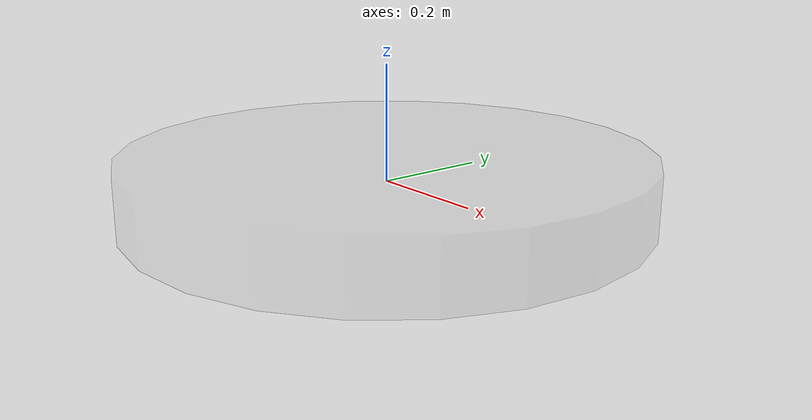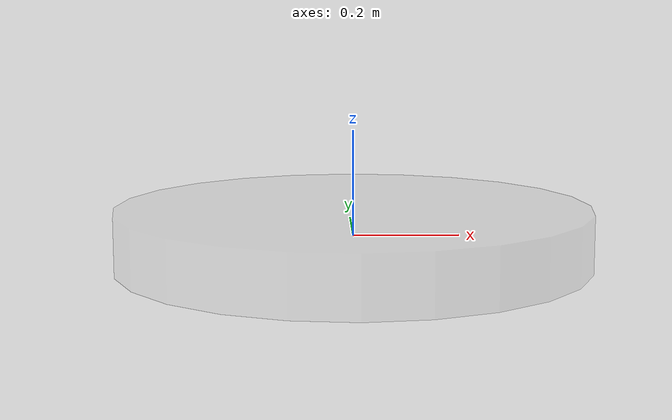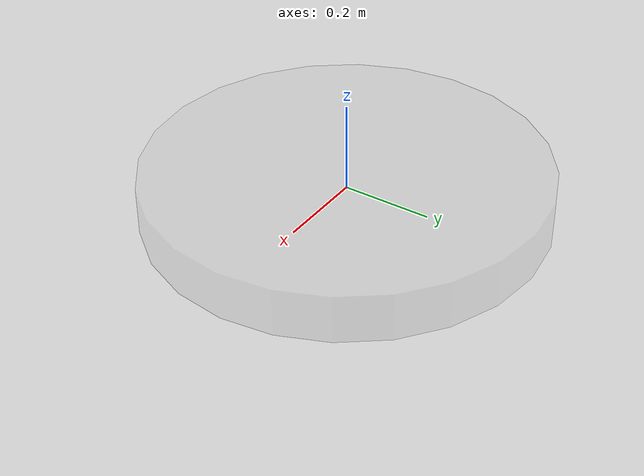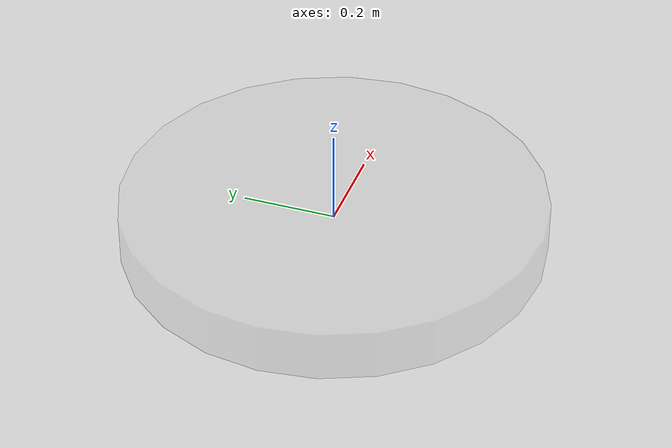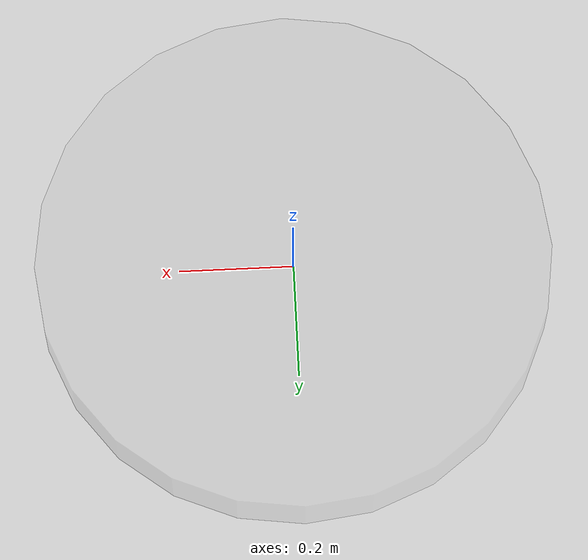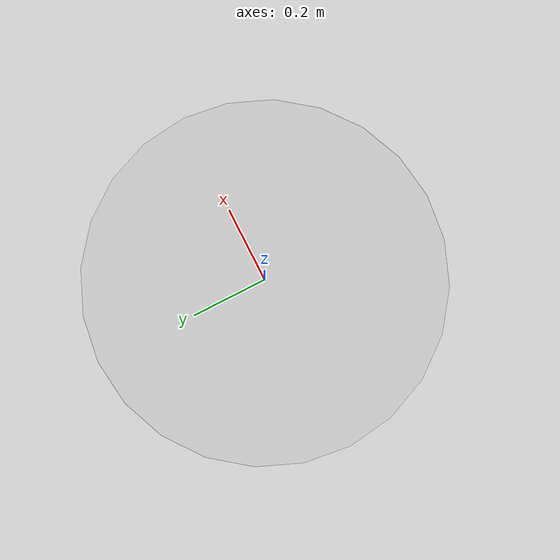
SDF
<?xml version="1.0" ?>
<sdf version="1.4">
  <model name="bumper_sensor">
    <!-- Only difference to regular iris is this sensor and a MAVLink stream -->
    <link name="bumper_link">
      <inertial>
        <pose>0.01 0.025 0.025 0 0 0</pose>
        <mass>0.01</mass>
        <inertia>
          <ixx>4.15e-6</ixx>
          <ixy>0</ixy>
          <ixz>0</ixz>
          <iyy>2.407e-6</iyy>
          <iyz>0</iyz>
          <izz>2.407e-6</izz>
        </inertia>
      </inertial>

      <collision name='bumper_collision'>
        <pose>0 0 0 0 -0 0</pose>
        <geometry>
	  <cylinder>
	    <radius> 0.45 </radius>
	    <length> 0.11 </length>
	  </cylinder>
        </geometry>
      </collision>

      <visual name='bumper_visual'>
        <pose>0 0 0 0 -0 0</pose>
        <geometry>
	  <cylinder>
	    <radius> 0.45 </radius>
	    <length> 0.11 </length>
	  </cylinder>
        </geometry>

	<transparency> 0.9 </transparency>
      </visual>

      <sensor name="bumper_sensor" type="contact">
        <always_on>true</always_on>
        <update_rate>30.0</update_rate>
        <contact>
          <collision>bumper_collision</collision>
        </contact>
        <plugin name="benchmarking_bumper" filename="libgazebo_ros_bumper.so">
          <bumperTopicName>px4/collision</bumperTopicName>
        </plugin>
      </sensor>

    </link>
  </model>
</sdf>
